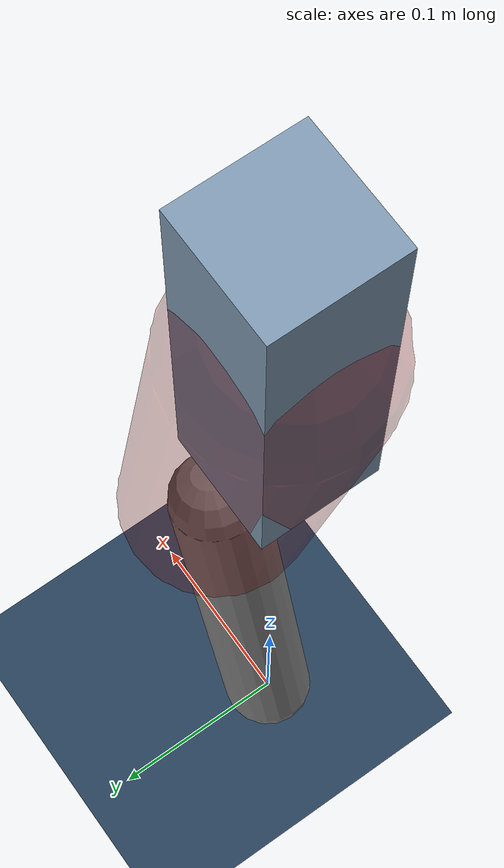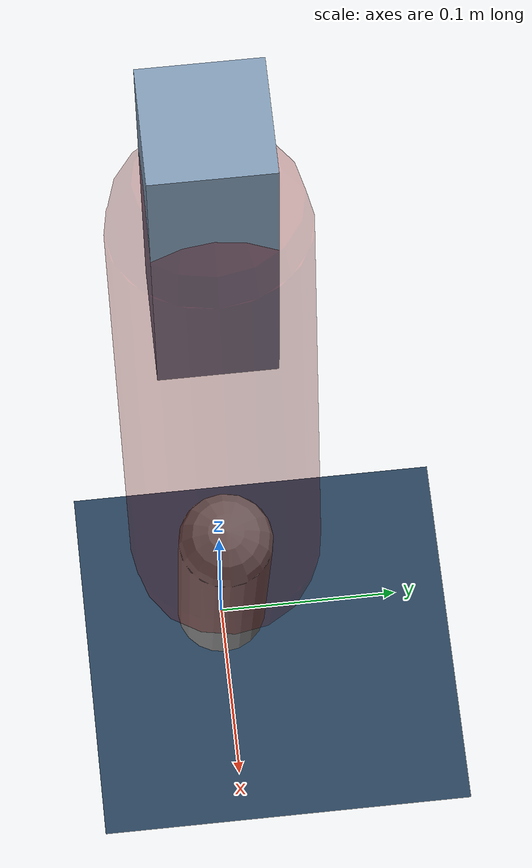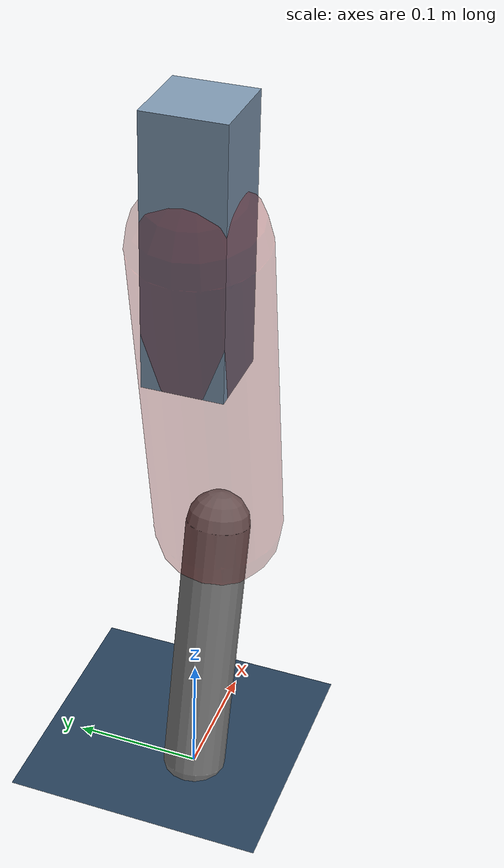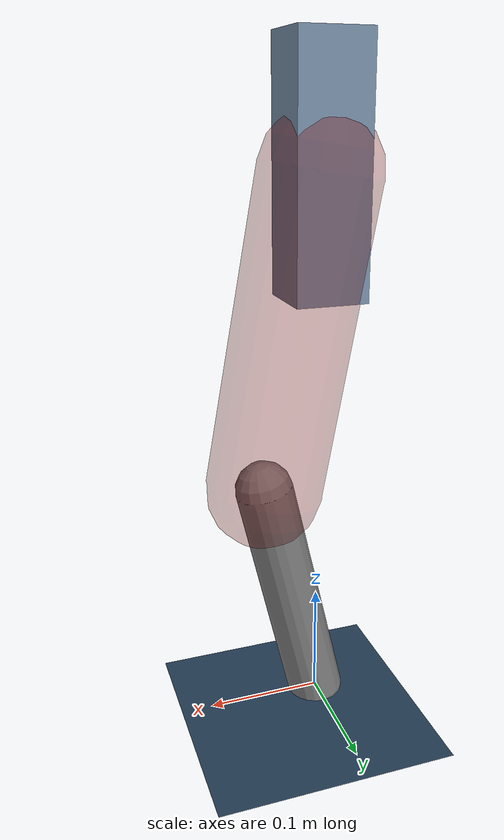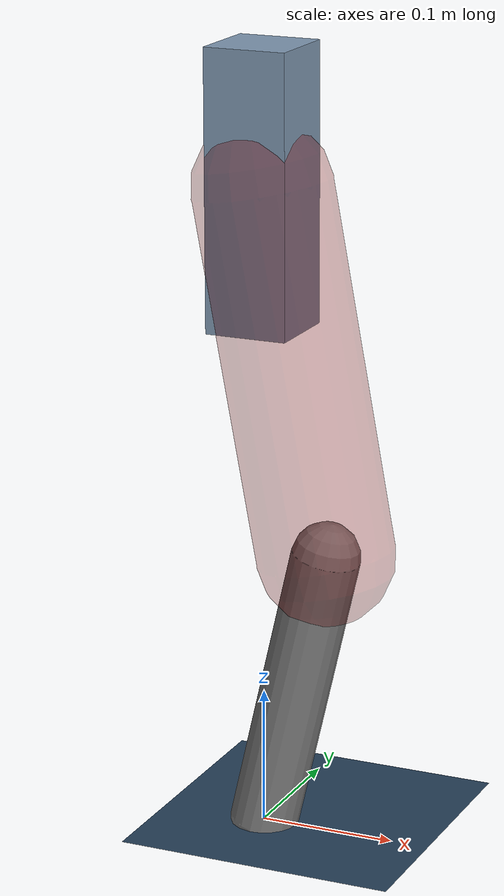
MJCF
<mujoco model="Hopper2D">
	<compiler inertiafromgeom="true" angle="radian" />
	<option timestep="0.001" integrator="implicit" cone="elliptic" solver="Newton" tolerance="1e-10" />

	<default>
		<geom contype="1" conaffinity="1" condim="3" friction="2 0.005 0.0001" solref="0.005 1" />
		<joint limited="true" damping="0.1" />
	</default>

	<asset>
		<texture name="skybox" type="skybox" builtin="gradient" rgb1=".4 .6 .8" rgb2="0 0 0" width="800" height="800" />
		<texture name="grid" type="2d" builtin="checker" rgb1=".1 .2 .3" rgb2=".2 .3 .4" width="300" height="300" mark="edge" markrgb=".2 .3 .4" />
		<material name="ground" texture="grid" texrepeat="1 1" texuniform="true" reflectance="0.1" />
		<material name="leg" rgba="0.5 0.6 0.7 1" />
	</asset>

	<worldbody>

		<geom name="floor" type="plane" size="5 5 0.25" material="ground" />

		<light directional="false" diffuse="0.8 0.8 0.8" specular="0.3 0.3 0.3" pos="0 0 2" dir="0 0 -1" />
		<light mode="targetbodycom" target="base" directional="false" diffuse="0.8 0.8 0.8" specular="0.3 0.3 0.3" pos="0 0 2" dir="0 0 -1" />

		<camera name="fixed" pos="0 -2 1" xyaxes="1 0 0 0 0 1" />
		<camera name="tracking" mode="trackcom" pos="0 -3 1" />

		<body name="root" pos="0 0 0.4717285865532126">
			<joint name="slide_x" type="slide" axis="1 0 0" range="-100 100" />
			<joint name="slide_z" type="slide" axis="0 0 1" range="0 10" />

			<body name="base" pos="0 0 0">
				<geom name="torso" type="box" size="0.03 0.03 0.1" mass="2.045" material="leg" />

				<body name="link1" pos="0 0 0" euler="0 1.3872280964427788 0">
					<joint type="hinge" axis="0 -1 0" pos="0 0 0" name="hinge1" limited="true" range="-3.14 3.14" stiffness="0" damping="0.1" />
					<geom name="thigh" type="capsule" fromto="0 0 0 0.26594705957042075 0 0" size="0.05" rgba="0.5 0 0 0.3" mass="0.897962354883094" />

					<body name="link2" pos="0.26594705957042075 0 0" euler="0 0.4104868604686365 0">
						<joint type="hinge" axis="0 -1 0" pos="0 0 0" name="hinge2" limited="true" range="-3.14 3.14" stiffness="0" damping="0.1" />
						<geom name="shank" type="capsule" fromto="0 0 0 0.21578152698279185 0 0" size="0.025" mass="0.4141252215862335" />

					</body>
				</body>
			</body>
		</body>
	</worldbody>

	<actuator>
		<motor name="torque1" joint="hinge1" ctrlrange="-64.97237682326566 64.97237682326566" ctrllimited="true" gear="1" />
		<motor name="torque2" joint="hinge2" ctrlrange="-59.12100920186255 59.12100920186255" ctrllimited="true" gear="1" />
	</actuator>
</mujoco>
